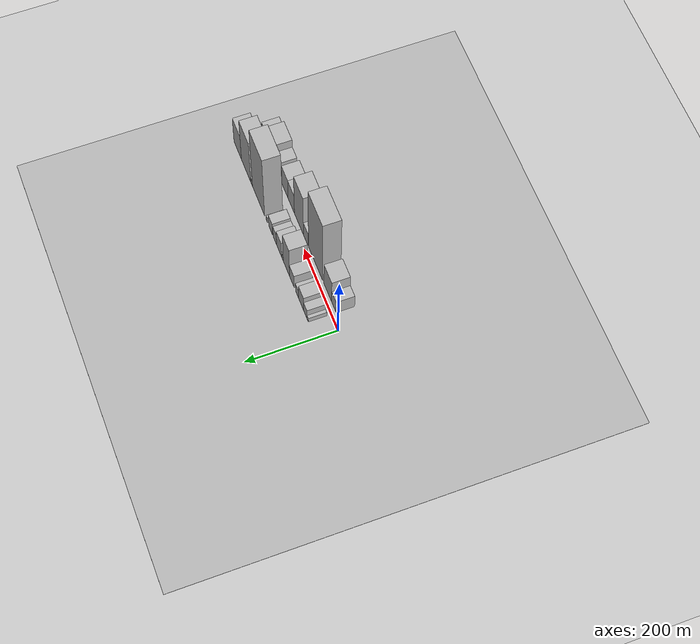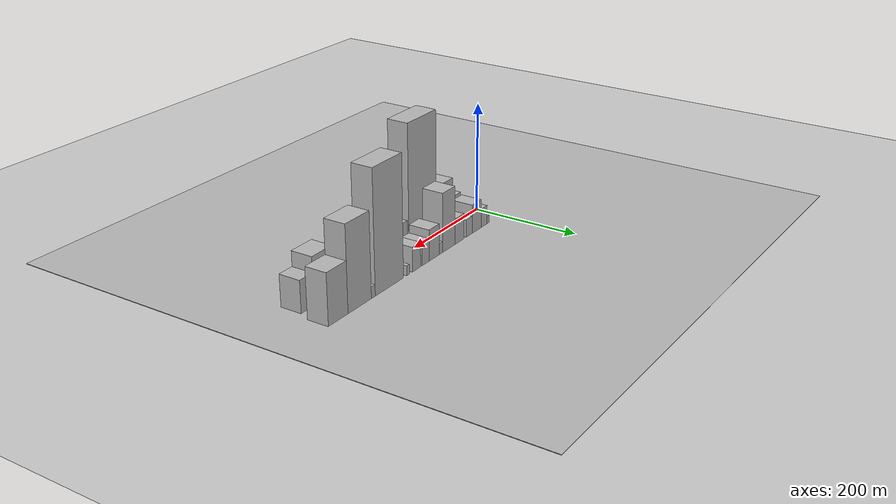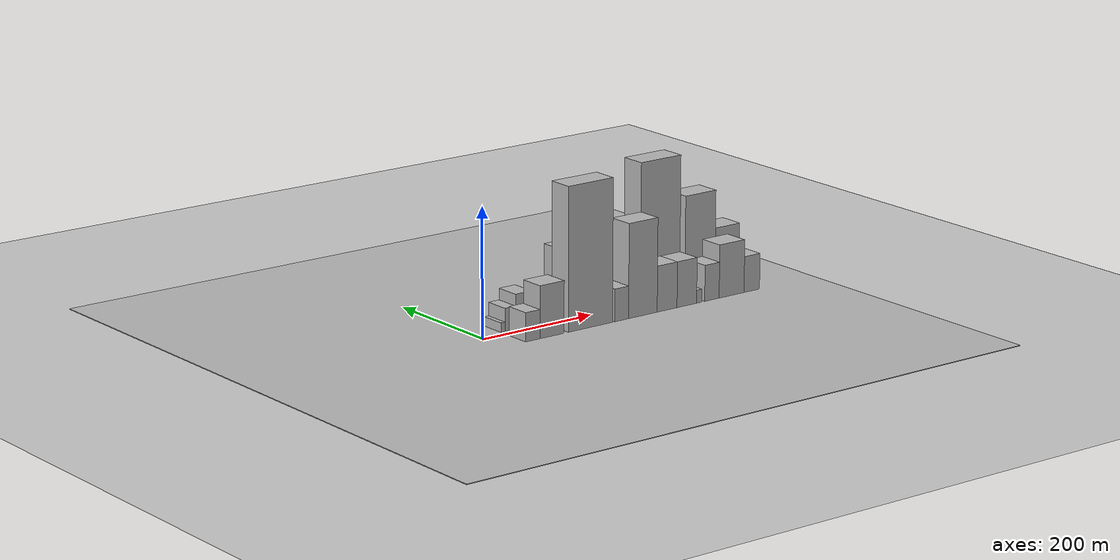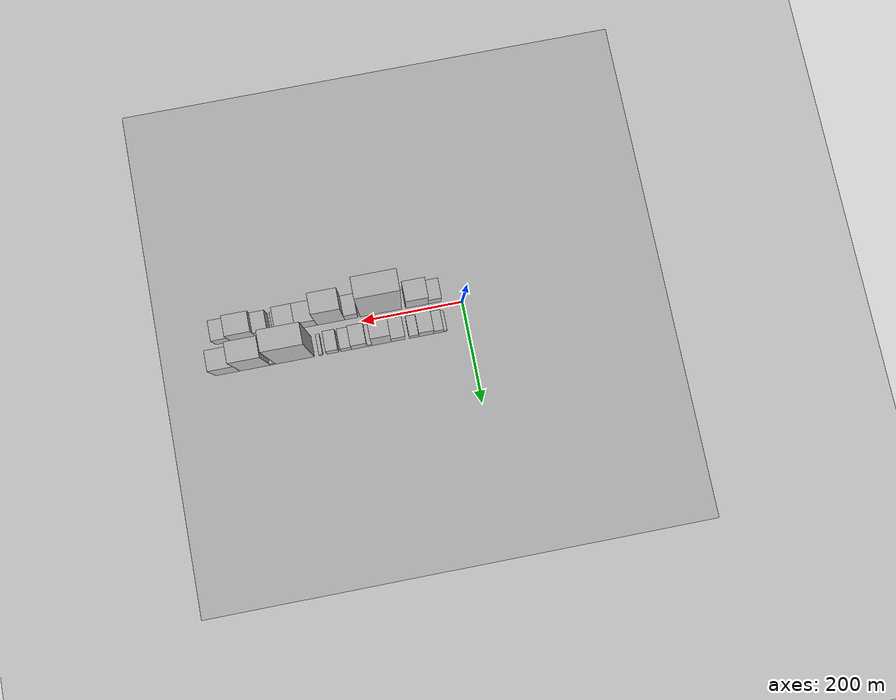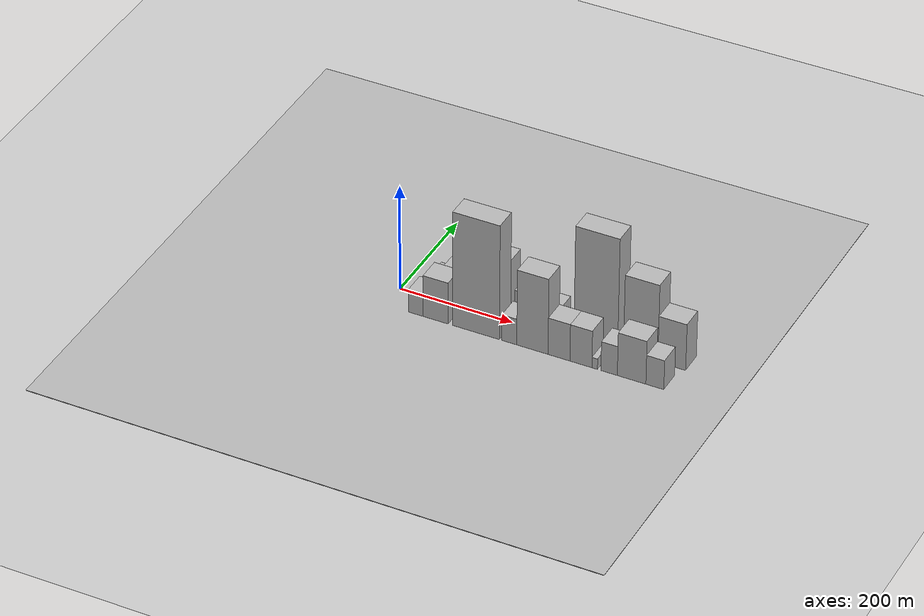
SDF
<?xml version="1.0" encoding="utf-8"?>

<sdf version="1.6">

   <world name="default">

      <gui fullscreen="0">

         <camera name="user_camera">

            <pose>-15 0 4.57585 0 0 0</pose>

            <view_controller>orbit</view_controller>

         </camera>

      </gui>

      <scene>

         <sky>

           <clouds>

             <speed>12</speed>

           </clouds>

         </sky>

         <ambient>0.4 0.4 0.4 1</ambient>

         <background>0.7 0.7 0.7 1</background>

         <shadows>1</shadows>

      </scene>

      <gravity>0 0 -9.8066</gravity>

      <magnetic_field>6e-06 2.3e-05 -4.2e-05</magnetic_field>

      <physics default="0" name="default_physics" type="ode">

         <ode>

            <solver>

               <type>quick</type>

               <iters>10</iters>

               <sor>1.0</sor>

               <use_dynamic_moi_rescaling>0</use_dynamic_moi_rescaling>

            </solver>

            <constraints>

               <cfm>0</cfm>

               <erp>0.2</erp>

               <contact_max_correcting_vel>100</contact_max_correcting_vel>

               <contact_surface_layer>0.001</contact_surface_layer>

            </constraints>

         </ode>

         <max_step_size>0.004</max_step_size>

         <real_time_factor>1</real_time_factor>

         <real_time_update_rate>250</real_time_update_rate>

      </physics>

      <light name="sun" type="directional">

         <cast_shadows>1</cast_shadows>

         <pose>0 0 10 0 0 0</pose>

         <diffuse>0.8 0.8 0.8 1</diffuse>

         <specular>0.2 0.2 0.2 1</specular>

         <attenuation>

            <range>1000</range>

            <constant>0.9</constant>

            <linear>0.01</linear>

            <quadratic>0.001</quadratic>

         </attenuation>

         <direction>-0.5 0.1 -0.9</direction>

      </light>

      <include>

         <name>ground_plane_1</name>

         <uri>model://HANNAS_ground_plane</uri>

         <pose>0 0 0  0 0 0</pose>

      </include>

      <include>

         <name>ground_plane_2</name>

         <uri>model://HANNAS_ground_plane</uri>

         <pose>100 0 0  0 0 0</pose>

      </include>

      <model name="building_1">

         <static>1</static>

         <pose frame="">43.7433 30.0000 0 0.000000 0.000000 1.570796</pose>

         <link name="link">

            <pose frame="">0 0 7.50 0 0 0</pose>

            <collision name="collision">

               <geometry>

                  <box>

                     <size>40.0000 7.4865 15.0000</size>

                  </box>

               </geometry>

               <max_contacts>10</max_contacts>

               <surface>

                  <contact>

                     <ode/>

                  </contact>

                  <bounce/>

                  <friction>

                     <torsional>

                        <ode/>

                     </torsional>

                     <ode/>

                  </friction>

               </surface>

            </collision>

            <visual name="visual">

               <cast_shadows>0</cast_shadows>

               <geometry>

                  <box>

                     <size>40.0000 7.4865 15.0000</size>

                  </box>

               </geometry>

               <material>

                  <script>

                     <uri>model://HANNAS_wall/materials/scripts</uri>

                     <uri>model://HANNAS_wall/materials/textures</uri>

                     <name>vrc/HANNAS_wall</name>

                  </script>

               </material>

            </visual>

            <self_collide>0</self_collide>

            <enable_wind>0</enable_wind>

            <kinematic>0</kinematic>

         </link>

      </model>

      <model name="building_2">

         <static>1</static>

         <pose frame="">57.2591 30.0000 0 0.000000 0.000000 1.570796</pose>

         <link name="link">

            <pose frame="">0 0 18.00 0 0 0</pose>

            <collision name="collision">

               <geometry>

                  <box>

                     <size>40.0000 19.5451 36.0000</size>

                  </box>

               </geometry>

               <max_contacts>10</max_contacts>

               <surface>

                  <contact>

                     <ode/>

                  </contact>

                  <bounce/>

                  <friction>

                     <torsional>

                        <ode/>

                     </torsional>

                     <ode/>

                  </friction>

               </surface>

            </collision>

            <visual name="visual">

               <cast_shadows>0</cast_shadows>

               <geometry>

                  <box>

                     <size>40.0000 19.5451 36.0000</size>

                  </box>

               </geometry>

               <material>

                  <script>

                     <uri>model://HANNAS_wall/materials/scripts</uri>

                     <uri>model://HANNAS_wall/materials/textures</uri>

                     <name>vrc/HANNAS_wall</name>

                  </script>

               </material>

            </visual>

            <self_collide>0</self_collide>

            <enable_wind>0</enable_wind>

            <kinematic>0</kinematic>

         </link>

      </model>

      <model name="building_3">

         <static>1</static>

         <pose frame="">81.8233 30.0000 0 0.000000 0.000000 1.570796</pose>

         <link name="link">

            <pose frame="">0 0 27.00 0 0 0</pose>

            <collision name="collision">

               <geometry>

                  <box>

                     <size>40.0000 29.5833 54.0000</size>

                  </box>

               </geometry>

               <max_contacts>10</max_contacts>

               <surface>

                  <contact>

                     <ode/>

                  </contact>

                  <bounce/>

                  <friction>

                     <torsional>

                        <ode/>

                     </torsional>

                     <ode/>

                  </friction>

               </surface>

            </collision>

            <visual name="visual">

               <cast_shadows>0</cast_shadows>

               <geometry>

                  <box>

                     <size>40.0000 29.5833 54.0000</size>

                  </box>

               </geometry>

               <material>

                  <script>

                     <uri>model://HANNAS_wall/materials/scripts</uri>

                     <uri>model://HANNAS_wall/materials/textures</uri>

                     <name>vrc/HANNAS_wall</name>

                  </script>

               </material>

            </visual>

            <self_collide>0</self_collide>

            <enable_wind>0</enable_wind>

            <kinematic>0</kinematic>

         </link>

      </model>

      <model name="building_4">

         <static>1</static>

         <pose frame="">105.9422 30.0000 0 0.000000 0.000000 1.570796</pose>

         <link name="link">

            <pose frame="">0 0 16.50 0 0 0</pose>

            <collision name="collision">

               <geometry>

                  <box>

                     <size>40.0000 18.6545 33.0000</size>

                  </box>

               </geometry>

               <max_contacts>10</max_contacts>

               <surface>

                  <contact>

                     <ode/>

                  </contact>

                  <bounce/>

                  <friction>

                     <torsional>

                        <ode/>

                     </torsional>

                     <ode/>

                  </friction>

               </surface>

            </collision>

            <visual name="visual">

               <cast_shadows>0</cast_shadows>

               <geometry>

                  <box>

                     <size>40.0000 18.6545 33.0000</size>

                  </box>

               </geometry>

               <material>

                  <script>

                     <uri>model://HANNAS_wall/materials/scripts</uri>

                     <uri>model://HANNAS_wall/materials/textures</uri>

                     <name>vrc/HANNAS_wall</name>

                  </script>

               </material>

            </visual>

            <self_collide>0</self_collide>

            <enable_wind>0</enable_wind>

            <kinematic>0</kinematic>

         </link>

      </model>

      <model name="building_5">

         <static>1</static>

         <pose frame="">137.1378 30.0000 0 0.000000 0.000000 1.570796</pose>

         <link name="link">

            <pose frame="">0 0 24.00 0 0 0</pose>

            <collision name="collision">

               <geometry>

                  <box>

                     <size>40.0000 27.7366 48.0000</size>

                  </box>

               </geometry>

               <max_contacts>10</max_contacts>

               <surface>

                  <contact>

                     <ode/>

                  </contact>

                  <bounce/>

                  <friction>

                     <torsional>

                        <ode/>

                     </torsional>

                     <ode/>

                  </friction>

               </surface>

            </collision>

            <visual name="visual">

               <cast_shadows>0</cast_shadows>

               <geometry>

                  <box>

                     <size>40.0000 27.7366 48.0000</size>

                  </box>

               </geometry>

               <material>

                  <script>

                     <uri>model://HANNAS_wall/materials/scripts</uri>

                     <uri>model://HANNAS_wall/materials/textures</uri>

                     <name>vrc/HANNAS_wall</name>

                  </script>

               </material>

            </visual>

            <self_collide>0</self_collide>

            <enable_wind>0</enable_wind>

            <kinematic>0</kinematic>

         </link>

      </model>

      <model name="building_6">

         <static>1</static>

         <pose frame="">169.9851 30.0000 0 0.000000 0.000000 1.570796</pose>

         <link name="link">

            <pose frame="">0 0 54.00 0 0 0</pose>

            <collision name="collision">

               <geometry>

                  <box>

                     <size>40.0000 37.9580 108.0000</size>

                  </box>

               </geometry>

               <max_contacts>10</max_contacts>

               <surface>

                  <contact>

                     <ode/>

                  </contact>

                  <bounce/>

                  <friction>

                     <torsional>

                        <ode/>

                     </torsional>

                     <ode/>

                  </friction>

               </surface>

            </collision>

            <visual name="visual">

               <cast_shadows>0</cast_shadows>

               <geometry>

                  <box>

                     <size>40.0000 37.9580 108.0000</size>

                  </box>

               </geometry>

               <material>

                  <script>

                     <uri>model://HANNAS_wall/materials/scripts</uri>

                     <uri>model://HANNAS_wall/materials/textures</uri>

                     <name>vrc/HANNAS_wall</name>

                  </script>

               </material>

            </visual>

            <self_collide>0</self_collide>

            <enable_wind>0</enable_wind>

            <kinematic>0</kinematic>

         </link>

      </model>

      <model name="building_7">

         <static>1</static>

         <pose frame="">193.8160 30.0000 0 0.000000 0.000000 1.570796</pose>

         <link name="link">

            <pose frame="">0 0 10.50 0 0 0</pose>

            <collision name="collision">

               <geometry>

                  <box>

                     <size>40.0000 9.7037 21.0000</size>

                  </box>

               </geometry>

               <max_contacts>10</max_contacts>

               <surface>

                  <contact>

                     <ode/>

                  </contact>

                  <bounce/>

                  <friction>

                     <torsional>

                        <ode/>

                     </torsional>

                     <ode/>

                  </friction>

               </surface>

            </collision>

            <visual name="visual">

               <cast_shadows>0</cast_shadows>

               <geometry>

                  <box>

                     <size>40.0000 9.7037 21.0000</size>

                  </box>

               </geometry>

               <material>

                  <script>

                     <uri>model://HANNAS_wall/materials/scripts</uri>

                     <uri>model://HANNAS_wall/materials/textures</uri>

                     <name>vrc/HANNAS_wall</name>

                  </script>

               </material>

            </visual>

            <self_collide>0</self_collide>

            <enable_wind>0</enable_wind>

            <kinematic>0</kinematic>

         </link>

      </model>

      <model name="building_8">

         <static>1</static>

         <pose frame="">213.9045 30.0000 0 0.000000 0.000000 1.570796</pose>

         <link name="link">

            <pose frame="">0 0 28.50 0 0 0</pose>

            <collision name="collision">

               <geometry>

                  <box>

                     <size>40.0000 30.4732 57.0000</size>

                  </box>

               </geometry>

               <max_contacts>10</max_contacts>

               <surface>

                  <contact>

                     <ode/>

                  </contact>

                  <bounce/>

                  <friction>

                     <torsional>

                        <ode/>

                     </torsional>

                     <ode/>

                  </friction>

               </surface>

            </collision>

            <visual name="visual">

               <cast_shadows>0</cast_shadows>

               <geometry>

                  <box>

                     <size>40.0000 30.4732 57.0000</size>

                  </box>

               </geometry>

               <material>

                  <script>

                     <uri>model://HANNAS_wall/materials/scripts</uri>

                     <uri>model://HANNAS_wall/materials/textures</uri>

                     <name>vrc/HANNAS_wall</name>

                  </script>

               </material>

            </visual>

            <self_collide>0</self_collide>

            <enable_wind>0</enable_wind>

            <kinematic>0</kinematic>

         </link>

      </model>

      <model name="building_9">

         <static>1</static>

         <pose frame="">239.7759 30.0000 0 0.000000 0.000000 1.570796</pose>

         <link name="link">

            <pose frame="">0 0 21.00 0 0 0</pose>

            <collision name="collision">

               <geometry>

                  <box>

                     <size>40.0000 21.2697 42.0000</size>

                  </box>

               </geometry>

               <max_contacts>10</max_contacts>

               <surface>

                  <contact>

                     <ode/>

                  </contact>

                  <bounce/>

                  <friction>

                     <torsional>

                        <ode/>

                     </torsional>

                     <ode/>

                  </friction>

               </surface>

            </collision>

            <visual name="visual">

               <cast_shadows>0</cast_shadows>

               <geometry>

                  <box>

                     <size>40.0000 21.2697 42.0000</size>

                  </box>

               </geometry>

               <material>

                  <script>

                     <uri>model://HANNAS_wall/materials/scripts</uri>

                     <uri>model://HANNAS_wall/materials/textures</uri>

                     <name>vrc/HANNAS_wall</name>

                  </script>

               </material>

            </visual>

            <self_collide>0</self_collide>

            <enable_wind>0</enable_wind>

            <kinematic>0</kinematic>

         </link>

      </model>

      <model name="building_10">

         <static>1</static>

         <pose frame="">266.1989 30.0000 0 0.000000 0.000000 1.570796</pose>

         <link name="link">

            <pose frame="">0 0 22.50 0 0 0</pose>

            <collision name="collision">

               <geometry>

                  <box>

                     <size>40.0000 23.5762 45.0000</size>

                  </box>

               </geometry>

               <max_contacts>10</max_contacts>

               <surface>

                  <contact>

                     <ode/>

                  </contact>

                  <bounce/>

                  <friction>

                     <torsional>

                        <ode/>

                     </torsional>

                     <ode/>

                  </friction>

               </surface>

            </collision>

            <visual name="visual">

               <cast_shadows>0</cast_shadows>

               <geometry>

                  <box>

                     <size>40.0000 23.5762 45.0000</size>

                  </box>

               </geometry>

               <material>

                  <script>

                     <uri>model://HANNAS_wall/materials/scripts</uri>

                     <uri>model://HANNAS_wall/materials/textures</uri>

                     <name>vrc/HANNAS_wall</name>

                  </script>

               </material>

            </visual>

            <self_collide>0</self_collide>

            <enable_wind>0</enable_wind>

            <kinematic>0</kinematic>

         </link>

      </model>

      <model name="building_11">

         <static>1</static>

         <pose frame="">289.6335 30.0000 0 0.000000 0.000000 1.570796</pose>

         <link name="link">

            <pose frame="">0 0 9.00 0 0 0</pose>

            <collision name="collision">

               <geometry>

                  <box>

                     <size>40.0000 7.2930 18.0000</size>

                  </box>

               </geometry>

               <max_contacts>10</max_contacts>

               <surface>

                  <contact>

                     <ode/>

                  </contact>

                  <bounce/>

                  <friction>

                     <torsional>

                        <ode/>

                     </torsional>

                     <ode/>

                  </friction>

               </surface>

            </collision>

            <visual name="visual">

               <cast_shadows>0</cast_shadows>

               <geometry>

                  <box>

                     <size>40.0000 7.2930 18.0000</size>

                  </box>

               </geometry>

               <material>

                  <script>

                     <uri>model://HANNAS_wall/materials/scripts</uri>

                     <uri>model://HANNAS_wall/materials/textures</uri>

                     <name>vrc/HANNAS_wall</name>

                  </script>

               </material>

            </visual>

            <self_collide>0</self_collide>

            <enable_wind>0</enable_wind>

            <kinematic>0</kinematic>

         </link>

      </model>

      <model name="building_12">

         <static>1</static>

         <pose frame="">341.5662 30.0000 0 0.000000 0.000000 1.570796</pose>

         <link name="link">

            <pose frame="">0 0 108.00 0 0 0</pose>

            <collision name="collision">

               <geometry>

                  <box>

                     <size>40.0000 76.5724 216.0000</size>

                  </box>

               </geometry>

               <max_contacts>10</max_contacts>

               <surface>

                  <contact>

                     <ode/>

                  </contact>

                  <bounce/>

                  <friction>

                     <torsional>

                        <ode/>

                     </torsional>

                     <ode/>

                  </friction>

               </surface>

            </collision>

            <visual name="visual">

               <cast_shadows>0</cast_shadows>

               <geometry>

                  <box>

                     <size>40.0000 76.5724 216.0000</size>

                  </box>

               </geometry>

               <material>

                  <script>

                     <uri>model://HANNAS_wall/materials/scripts</uri>

                     <uri>model://HANNAS_wall/materials/textures</uri>

                     <name>vrc/HANNAS_wall</name>

                  </script>

               </material>

            </visual>

            <self_collide>0</self_collide>

            <enable_wind>0</enable_wind>

            <kinematic>0</kinematic>

         </link>

      </model>

      <model name="building_13">

         <static>1</static>

         <pose frame="">384.9433 30.0000 0 0.000000 0.000000 1.570796</pose>

         <link name="link">

            <pose frame="">0 0 10.50 0 0 0</pose>

            <collision name="collision">

               <geometry>

                  <box>

                     <size>40.0000 10.1819 21.0000</size>

                  </box>

               </geometry>

               <max_contacts>10</max_contacts>

               <surface>

                  <contact>

                     <ode/>

                  </contact>

                  <bounce/>

                  <friction>

                     <torsional>

                        <ode/>

                     </torsional>

                     <ode/>

                  </friction>

               </surface>

            </collision>

            <visual name="visual">

               <cast_shadows>0</cast_shadows>

               <geometry>

                  <box>

                     <size>40.0000 10.1819 21.0000</size>

                  </box>

               </geometry>

               <material>

                  <script>

                     <uri>model://HANNAS_wall/materials/scripts</uri>

                     <uri>model://HANNAS_wall/materials/textures</uri>

                     <name>vrc/HANNAS_wall</name>

                  </script>

               </material>

            </visual>

            <self_collide>0</self_collide>

            <enable_wind>0</enable_wind>

            <kinematic>0</kinematic>

         </link>

      </model>

      <model name="building_14">

         <static>1</static>

         <pose frame="">419.8376 30.0000 0 0.000000 0.000000 1.570796</pose>

         <link name="link">

            <pose frame="">0 0 75.00 0 0 0</pose>

            <collision name="collision">

               <geometry>

                  <box>

                     <size>40.0000 59.6065 150.0000</size>

                  </box>

               </geometry>

               <max_contacts>10</max_contacts>

               <surface>

                  <contact>

                     <ode/>

                  </contact>

                  <bounce/>

                  <friction>

                     <torsional>

                        <ode/>

                     </torsional>

                     <ode/>

                  </friction>

               </surface>

            </collision>

            <visual name="visual">

               <cast_shadows>0</cast_shadows>

               <geometry>

                  <box>

                     <size>40.0000 59.6065 150.0000</size>

                  </box>

               </geometry>

               <material>

                  <script>

                     <uri>model://HANNAS_wall/materials/scripts</uri>

                     <uri>model://HANNAS_wall/materials/textures</uri>

                     <name>vrc/HANNAS_wall</name>

                  </script>

               </material>

            </visual>

            <self_collide>0</self_collide>

            <enable_wind>0</enable_wind>

            <kinematic>0</kinematic>

         </link>

      </model>

      <model name="building_15">

         <static>1</static>

         <pose frame="">473.7648 30.0000 0 0.000000 0.000000 1.570796</pose>

         <link name="link">

            <pose frame="">0 0 45.00 0 0 0</pose>

            <collision name="collision">

               <geometry>

                  <box>

                     <size>40.0000 48.2480 90.0000</size>

                  </box>

               </geometry>

               <max_contacts>10</max_contacts>

               <surface>

                  <contact>

                     <ode/>

                  </contact>

                  <bounce/>

                  <friction>

                     <torsional>

                        <ode/>

                     </torsional>

                     <ode/>

                  </friction>

               </surface>

            </collision>

            <visual name="visual">

               <cast_shadows>0</cast_shadows>

               <geometry>

                  <box>

                     <size>40.0000 48.2480 90.0000</size>

                  </box>

               </geometry>

               <material>

                  <script>

                     <uri>model://HANNAS_wall/materials/scripts</uri>

                     <uri>model://HANNAS_wall/materials/textures</uri>

                     <name>vrc/HANNAS_wall</name>

                  </script>

               </material>

            </visual>

            <self_collide>0</self_collide>

            <enable_wind>0</enable_wind>

            <kinematic>0</kinematic>

         </link>

      </model>

      <model name="building_16">

         <static>1</static>

         <pose frame="">53.1254 -30.0000 0 0.000000 0.000000 1.570796</pose>

         <link name="link">

            <pose frame="">0 0 22.50 0 0 0</pose>

            <collision name="collision">

               <geometry>

                  <box>

                     <size>40.0000 26.2508 45.0000</size>

                  </box>

               </geometry>

               <max_contacts>10</max_contacts>

               <surface>

                  <contact>

                     <ode/>

                  </contact>

                  <bounce/>

                  <friction>

                     <torsional>

                        <ode/>

                     </torsional>

                     <ode/>

                  </friction>

               </surface>

            </collision>

            <visual name="visual">

               <cast_shadows>0</cast_shadows>

               <geometry>

                  <box>

                     <size>40.0000 26.2508 45.0000</size>

                  </box>

               </geometry>

               <material>

                  <script>

                     <uri>model://HANNAS_wall/materials/scripts</uri>

                     <uri>model://HANNAS_wall/materials/textures</uri>

                     <name>vrc/HANNAS_wall</name>

                  </script>

               </material>

            </visual>

            <self_collide>0</self_collide>

            <enable_wind>0</enable_wind>

            <kinematic>0</kinematic>

         </link>

      </model>

      <model name="building_17">

         <static>1</static>

         <pose frame="">88.5936 -30.0000 0 0.000000 0.000000 1.570796</pose>

         <link name="link">

            <pose frame="">0 0 40.50 0 0 0</pose>

            <collision name="collision">

               <geometry>

                  <box>

                     <size>40.0000 44.6855 81.0000</size>

                  </box>

               </geometry>

               <max_contacts>10</max_contacts>

               <surface>

                  <contact>

                     <ode/>

                  </contact>

                  <bounce/>

                  <friction>

                     <torsional>

                        <ode/>

                     </torsional>

                     <ode/>

                  </friction>

               </surface>

            </collision>

            <visual name="visual">

               <cast_shadows>0</cast_shadows>

               <geometry>

                  <box>

                     <size>40.0000 44.6855 81.0000</size>

                  </box>

               </geometry>

               <material>

                  <script>

                     <uri>model://HANNAS_wall/materials/scripts</uri>

                     <uri>model://HANNAS_wall/materials/textures</uri>

                     <name>vrc/HANNAS_wall</name>

                  </script>

               </material>

            </visual>

            <self_collide>0</self_collide>

            <enable_wind>0</enable_wind>

            <kinematic>0</kinematic>

         </link>

      </model>

      <model name="building_18">

         <static>1</static>

         <pose frame="">160.2985 -30.0000 0 0.000000 0.000000 1.570796</pose>

         <link name="link">

            <pose frame="">0 0 111.00 0 0 0</pose>

            <collision name="collision">

               <geometry>

                  <box>

                     <size>40.0000 82.7242 222.0000</size>

                  </box>

               </geometry>

               <max_contacts>10</max_contacts>

               <surface>

                  <contact>

                     <ode/>

                  </contact>

                  <bounce/>

                  <friction>

                     <torsional>

                        <ode/>

                     </torsional>

                     <ode/>

                  </friction>

               </surface>

            </collision>

            <visual name="visual">

               <cast_shadows>0</cast_shadows>

               <geometry>

                  <box>

                     <size>40.0000 82.7242 222.0000</size>

                  </box>

               </geometry>

               <material>

                  <script>

                     <uri>model://HANNAS_wall/materials/scripts</uri>

                     <uri>model://HANNAS_wall/materials/textures</uri>

                     <name>vrc/HANNAS_wall</name>

                  </script>

               </material>

            </visual>

            <self_collide>0</self_collide>

            <enable_wind>0</enable_wind>

            <kinematic>0</kinematic>

         </link>

      </model>

      <model name="building_19">

         <static>1</static>

         <pose frame="">218.8996 -30.0000 0 0.000000 0.000000 1.570796</pose>

         <link name="link">

            <pose frame="">0 0 25.50 0 0 0</pose>

            <collision name="collision">

               <geometry>

                  <box>

                     <size>40.0000 26.4780 51.0000</size>

                  </box>

               </geometry>

               <max_contacts>10</max_contacts>

               <surface>

                  <contact>

                     <ode/>

                  </contact>

                  <bounce/>

                  <friction>

                     <torsional>

                        <ode/>

                     </torsional>

                     <ode/>

                  </friction>

               </surface>

            </collision>

            <visual name="visual">

               <cast_shadows>0</cast_shadows>

               <geometry>

                  <box>

                     <size>40.0000 26.4780 51.0000</size>

                  </box>

               </geometry>

               <material>

                  <script>

                     <uri>model://HANNAS_wall/materials/scripts</uri>

                     <uri>model://HANNAS_wall/materials/textures</uri>

                     <name>vrc/HANNAS_wall</name>

                  </script>

               </material>

            </visual>

            <self_collide>0</self_collide>

            <enable_wind>0</enable_wind>

            <kinematic>0</kinematic>

         </link>

      </model>

      <model name="building_20">

         <static>1</static>

         <pose frame="">259.5537 -30.0000 0 0.000000 0.000000 1.570796</pose>

         <link name="link">

            <pose frame="">0 0 73.50 0 0 0</pose>

            <collision name="collision">

               <geometry>

                  <box>

                     <size>40.0000 54.8301 147.0000</size>

                  </box>

               </geometry>

               <max_contacts>10</max_contacts>

               <surface>

                  <contact>

                     <ode/>

                  </contact>

                  <bounce/>

                  <friction>

                     <torsional>

                        <ode/>

                     </torsional>

                     <ode/>

                  </friction>

               </surface>

            </collision>

            <visual name="visual">

               <cast_shadows>0</cast_shadows>

               <geometry>

                  <box>

                     <size>40.0000 54.8301 147.0000</size>

                  </box>

               </geometry>

               <material>

                  <script>

                     <uri>model://HANNAS_wall/materials/scripts</uri>

                     <uri>model://HANNAS_wall/materials/textures</uri>

                     <name>vrc/HANNAS_wall</name>

                  </script>

               </material>

            </visual>

            <self_collide>0</self_collide>

            <enable_wind>0</enable_wind>

            <kinematic>0</kinematic>

         </link>

      </model>

      <model name="building_21">

         <static>1</static>

         <pose frame="">306.1615 -30.0000 0 0.000000 0.000000 1.570796</pose>

         <link name="link">

            <pose frame="">0 0 36.00 0 0 0</pose>

            <collision name="collision">

               <geometry>

                  <box>

                     <size>40.0000 38.3855 72.0000</size>

                  </box>

               </geometry>

               <max_contacts>10</max_contacts>

               <surface>

                  <contact>

                     <ode/>

                  </contact>

                  <bounce/>

                  <friction>

                     <torsional>

                        <ode/>

                     </torsional>

                     <ode/>

                  </friction>

               </surface>

            </collision>

            <visual name="visual">

               <cast_shadows>0</cast_shadows>

               <geometry>

                  <box>

                     <size>40.0000 38.3855 72.0000</size>

                  </box>

               </geometry>

               <material>

                  <script>

                     <uri>model://HANNAS_wall/materials/scripts</uri>

                     <uri>model://HANNAS_wall/materials/textures</uri>

                     <name>vrc/HANNAS_wall</name>

                  </script>

               </material>

            </visual>

            <self_collide>0</self_collide>

            <enable_wind>0</enable_wind>

            <kinematic>0</kinematic>

         </link>

      </model>

      <model name="building_22">

         <static>1</static>

         <pose frame="">344.4972 -30.0000 0 0.000000 0.000000 1.570796</pose>

         <link name="link">

            <pose frame="">0 0 36.00 0 0 0</pose>

            <collision name="collision">

               <geometry>

                  <box>

                     <size>40.0000 38.2858 72.0000</size>

                  </box>

               </geometry>

               <max_contacts>10</max_contacts>

               <surface>

                  <contact>

                     <ode/>

                  </contact>

                  <bounce/>

                  <friction>

                     <torsional>

                        <ode/>

                     </torsional>

                     <ode/>

                  </friction>

               </surface>

            </collision>

            <visual name="visual">

               <cast_shadows>0</cast_shadows>

               <geometry>

                  <box>

                     <size>40.0000 38.2858 72.0000</size>

                  </box>

               </geometry>

               <material>

                  <script>

                     <uri>model://HANNAS_wall/materials/scripts</uri>

                     <uri>model://HANNAS_wall/materials/textures</uri>

                     <name>vrc/HANNAS_wall</name>

                  </script>

               </material>

            </visual>

            <self_collide>0</self_collide>

            <enable_wind>0</enable_wind>

            <kinematic>0</kinematic>

         </link>

      </model>

      <model name="building_23">

         <static>1</static>

         <pose frame="">368.4690 -30.0000 0 0.000000 0.000000 1.570796</pose>

         <link name="link">

            <pose frame="">0 0 10.50 0 0 0</pose>

            <collision name="collision">

               <geometry>

                  <box>

                     <size>40.0000 9.6578 21.0000</size>

                  </box>

               </geometry>

               <max_contacts>10</max_contacts>

               <surface>

                  <contact>

                     <ode/>

                  </contact>

                  <bounce/>

                  <friction>

                     <torsional>

                        <ode/>

                     </torsional>

                     <ode/>

                  </friction>

               </surface>

            </collision>

            <visual name="visual">

               <cast_shadows>0</cast_shadows>

               <geometry>

                  <box>

                     <size>40.0000 9.6578 21.0000</size>

                  </box>

               </geometry>

               <material>

                  <script>

                     <uri>model://HANNAS_wall/materials/scripts</uri>

                     <uri>model://HANNAS_wall/materials/textures</uri>

                     <name>vrc/HANNAS_wall</name>

                  </script>

               </material>

            </visual>

            <self_collide>0</self_collide>

            <enable_wind>0</enable_wind>

            <kinematic>0</kinematic>

         </link>

      </model>

      <model name="building_24">

         <static>1</static>

         <pose frame="">393.5481 -30.0000 0 0.000000 0.000000 1.570796</pose>

         <link name="link">

            <pose frame="">0 0 28.50 0 0 0</pose>

            <collision name="collision">

               <geometry>

                  <box>

                     <size>40.0000 28.5005 57.0000</size>

                  </box>

               </geometry>

               <max_contacts>10</max_contacts>

               <surface>

                  <contact>

                     <ode/>

                  </contact>

                  <bounce/>

                  <friction>

                     <torsional>

                        <ode/>

                     </torsional>

                     <ode/>

                  </friction>

               </surface>

            </collision>

            <visual name="visual">

               <cast_shadows>0</cast_shadows>

               <geometry>

                  <box>

                     <size>40.0000 28.5005 57.0000</size>

                  </box>

               </geometry>

               <material>

                  <script>

                     <uri>model://HANNAS_wall/materials/scripts</uri>

                     <uri>model://HANNAS_wall/materials/textures</uri>

                     <name>vrc/HANNAS_wall</name>

                  </script>

               </material>

            </visual>

            <self_collide>0</self_collide>

            <enable_wind>0</enable_wind>

            <kinematic>0</kinematic>

         </link>

      </model>

      <model name="building_25">

         <static>1</static>

         <pose frame="">432.4898 -30.0000 0 0.000000 0.000000 1.570796</pose>

         <link name="link">

            <pose frame="">0 0 42.00 0 0 0</pose>

            <collision name="collision">

               <geometry>

                  <box>

                     <size>40.0000 49.3829 84.0000</size>

                  </box>

               </geometry>

               <max_contacts>10</max_contacts>

               <surface>

                  <contact>

                     <ode/>

                  </contact>

                  <bounce/>

                  <friction>

                     <torsional>

                        <ode/>

                     </torsional>

                     <ode/>

                  </friction>

               </surface>

            </collision>

            <visual name="visual">

               <cast_shadows>0</cast_shadows>

               <geometry>

                  <box>

                     <size>40.0000 49.3829 84.0000</size>

                  </box>

               </geometry>

               <material>

                  <script>

                     <uri>model://HANNAS_wall/materials/scripts</uri>

                     <uri>model://HANNAS_wall/materials/textures</uri>

                     <name>vrc/HANNAS_wall</name>

                  </script>

               </material>

            </visual>

            <self_collide>0</self_collide>

            <enable_wind>0</enable_wind>

            <kinematic>0</kinematic>

         </link>

      </model>

      <model name="building_26">

         <static>1</static>

         <pose frame="">472.6439 -30.0000 0 0.000000 0.000000 1.570796</pose>

         <link name="link">

            <pose frame="">0 0 28.50 0 0 0</pose>

            <collision name="collision">

               <geometry>

                  <box>

                     <size>40.0000 30.9252 57.0000</size>

                  </box>

               </geometry>

               <max_contacts>10</max_contacts>

               <surface>

                  <contact>

                     <ode/>

                  </contact>

                  <bounce/>

                  <friction>

                     <torsional>

                        <ode/>

                     </torsional>

                     <ode/>

                  </friction>

               </surface>

            </collision>

            <visual name="visual">

               <cast_shadows>0</cast_shadows>

               <geometry>

                  <box>

                     <size>40.0000 30.9252 57.0000</size>

                  </box>

               </geometry>

               <material>

                  <script>

                     <uri>model://HANNAS_wall/materials/scripts</uri>

                     <uri>model://HANNAS_wall/materials/textures</uri>

                     <name>vrc/HANNAS_wall</name>

                  </script>

               </material>

            </visual>

            <self_collide>0</self_collide>

            <enable_wind>0</enable_wind>

            <kinematic>0</kinematic>

         </link>

      </model>

   </world>

</sdf>

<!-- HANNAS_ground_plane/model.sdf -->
<sdf version="1.4">
<model name="HANNAS_ground_plane">
  <static>true</static>
    <link name="link">
      <collision name="collision">
        <geometry>
          <plane>
            <normal>0 0 1</normal>
            <size>1000 1000</size>
          </plane>
        </geometry>
        <surface>
          <friction>
            <ode>
              <mu>100</mu>
              <mu2>50</mu2>
            </ode>
          </friction>
        </surface>
      </collision>
      <visual name="visual">
        <cast_shadows>false</cast_shadows>
        <geometry>
          <plane>
            <normal>0 0 1</normal>
            <size>1000 1000</size>
          </plane>
        </geometry>
        <material>
          <script>
            <uri>model://HANNAS_ground_plane/materials/scripts/HANNAS_ground_plane.material</uri>
	    <uri>model://HANNAS_ground_plane/materials/textures</uri>
            <name>HANNASGroundPlane/Image</name>
          </script>
        </material>
      </visual>
    </link>
  </model>
</sdf>
